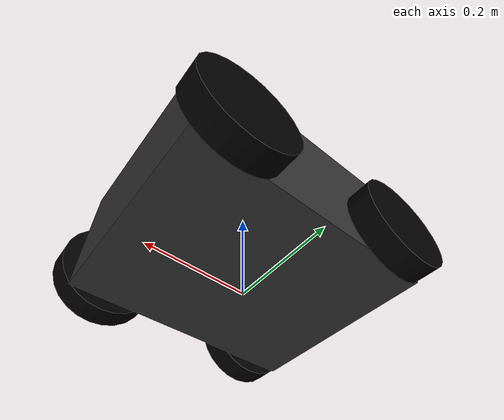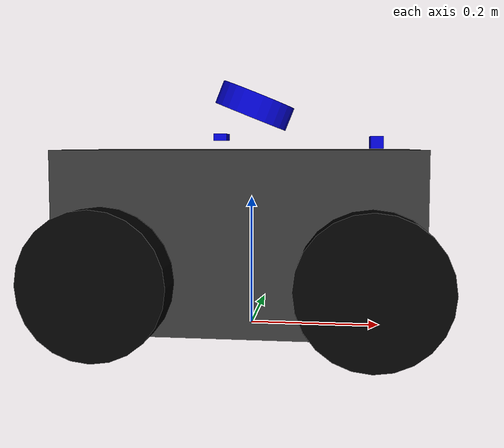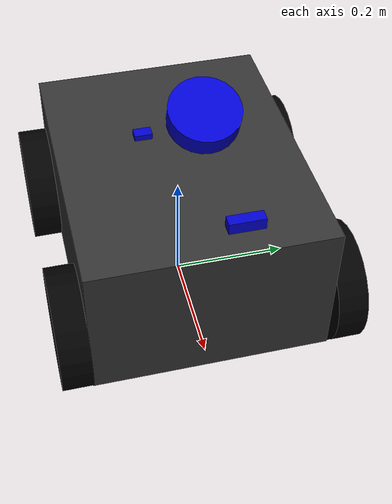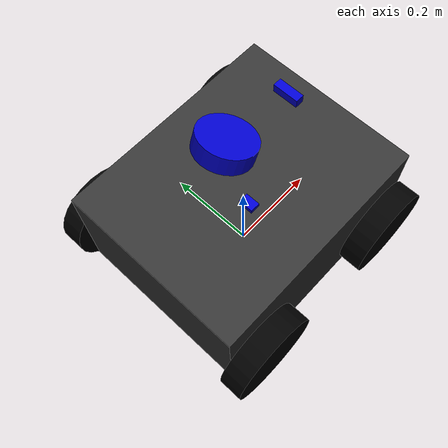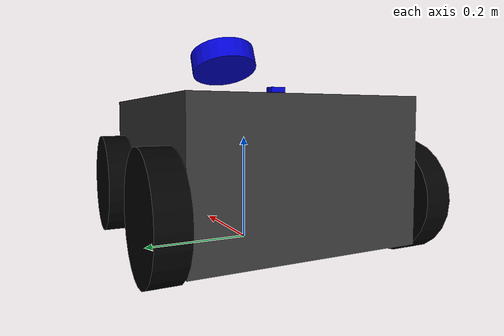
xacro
<?xml version="1.0"?>
<robot name="rover" xmlns:xacro="http://www.ros.org/wiki/xacro">

  <xacro:property name="chassis_length" value="0.50"/>
  <xacro:property name="chassis_width"  value="0.40"/>
  <xacro:property name="chassis_height" value="0.25"/>

  <xacro:property name="wheel_radius"   value="0.10"/>
  <xacro:property name="wheel_thickness" value="0.05"/>

  <xacro:property name="wheel_offset_x" value="0.18"/> <xacro:property name="wheel_offset_y" value="0.225"/> <xacro:property name="wheel_offset_z" value="-0.05"/> <material name="dark_grey"><color rgba="0.2 0.2 0.2 1.0"/></material>
  <material name="black"><color rgba="0.0 0.0 0.0 1.0"/></material>
  <material name="blue"><color rgba="0.0 0.0 0.8 1.0"/></material>
  <material name="red"><color rgba="0.8 0.0 0.0 1.0"/></material>

  <link name="base_footprint"/>

  <link name="base_link">
    <visual>
      <origin xyz="0 0 0" rpy="0 0 0"/>
      <geometry>
        <box size="${chassis_length} ${chassis_width} ${chassis_height}"/>
      </geometry>
      <material name="dark_grey"/>
    </visual>
  </link>

  <joint name="base_joint" type="fixed">
    <parent link="base_footprint"/>
    <child link="base_link"/>
    <origin xyz="0 0 ${wheel_radius - wheel_offset_z}" rpy="0 0 0"/>
  </joint>

  <xacro:macro name="wheel" params="prefix x_reflect y_reflect">
    <link name="${prefix}_wheel">
      <visual>
        <origin xyz="0 0 0" rpy="${pi/2} 0 0"/>
        <geometry>
          <cylinder radius="${wheel_radius}" length="${wheel_thickness}"/>
        </geometry>
        <material name="black"/>
      </visual>
    </link>

    <joint name="${prefix}_wheel_joint" type="continuous">
      <parent link="base_link"/>
      <child link="${prefix}_wheel"/>
      <origin xyz="${x_reflect * wheel_offset_x} ${y_reflect * wheel_offset_y} ${wheel_offset_z}" rpy="0 0 0"/>
      <axis xyz="0 1 0"/> </joint>
  </xacro:macro>

  <xacro:wheel prefix="front_left"  x_reflect="1"  y_reflect="1" />
  <xacro:wheel prefix="front_right" x_reflect="1"  y_reflect="-1" />
  <xacro:wheel prefix="rear_left"   x_reflect="-1" y_reflect="1" />
  <xacro:wheel prefix="rear_right"  x_reflect="-1" y_reflect="-1" />

  <link name="bno055">
    <visual>
      <geometry>
        <box size="0.03 0.02 0.01"/>
      </geometry>
      <material name="blue"/>
    </visual>
  </link>

  <joint name="imu_joint" type="fixed">
    <parent link="base_link"/>
    <child link="bno055"/>
    <!-- This configuration is based on my estimate for where the center of the chip is
    the IMU is mounted in a right-handed X right Y forward configuration. -->
    <origin xyz="-0.03928461 -0.050864 0.14345" rpy="0 0 ${pi/2}"/>
  </joint>

  <link name="rslidar">
    <visual>
      <geometry>
        <cylinder radius="0.061331" length="0.038040"/>
      </geometry>
      <material name="blue"/>
    </visual>
  </link>

  <joint name="lidar_joint" type="fixed">
    <parent link="base_link"/>
    <child link="rslidar"/>
    <origin xyz="0.0 0.043684 .19576183" rpy="0 ${22 * pi / 180} 0"/>
  </joint>

  <link name="camera_link">
    <visual>
      <geometry>
        <box size="0.02 0.06 0.02"/>
      </geometry>
      <material name="blue"/>
    </visual>
  </link>

  <joint name="camera_joint" type="fixed">
    <parent link="base_link"/>
    <child link="camera_link"/>
    <origin xyz=".196296 .060 .135925" rpy="0 0 0"/>
  </joint>

  <link name="camera_link_optical"/>
  <joint name="camera_optical_joint" type="fixed">
    <parent link="camera_link"/>
    <child link="camera_link_optical"/>
    <origin xyz="0 0 0" rpy="-${pi/2} 0 -${pi/2}"/>
  </joint>

</robot>
